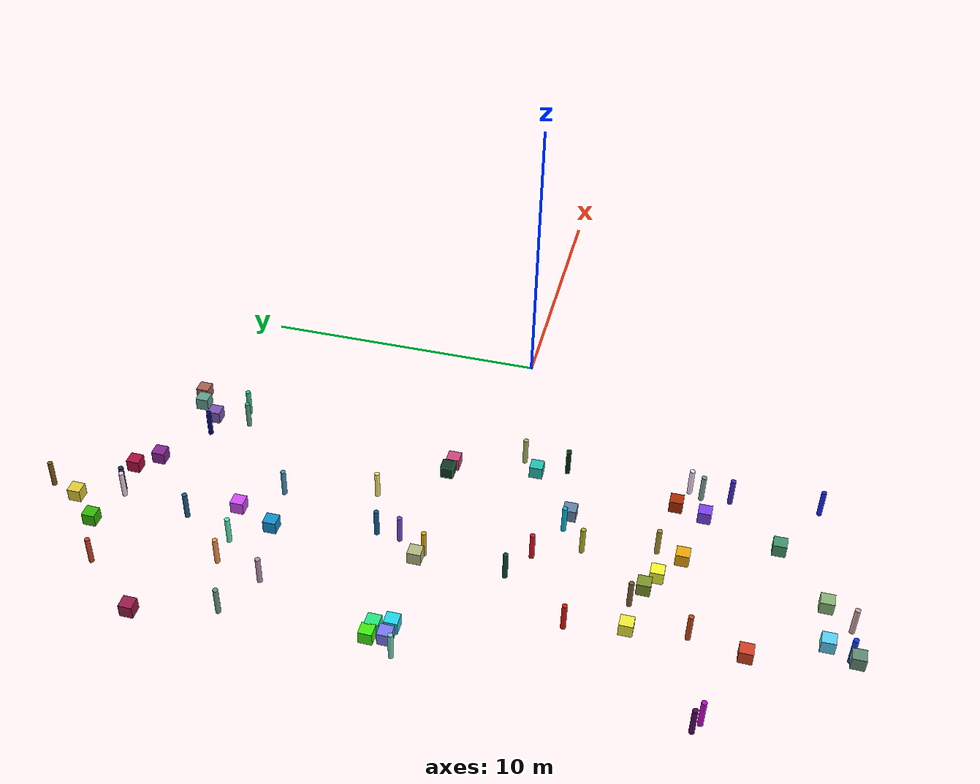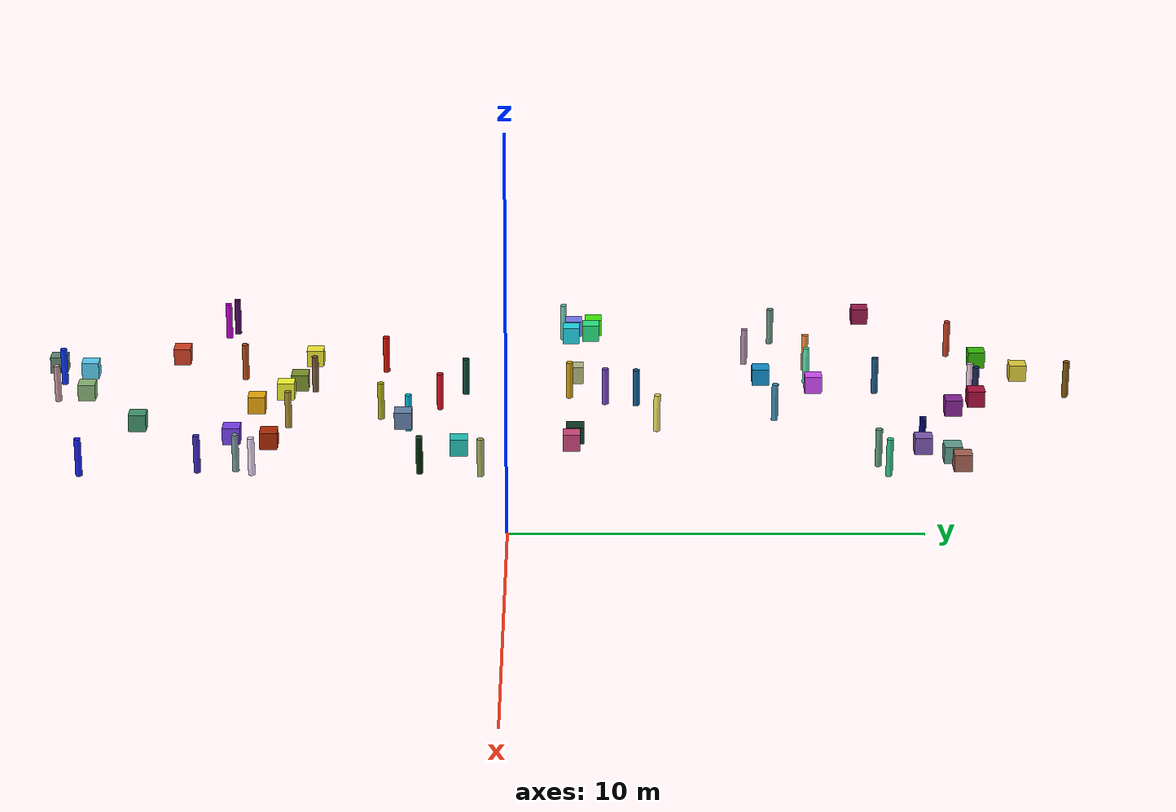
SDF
<sdf version="1.7">
 <world name="warehouse">
  <model name="ground_plane">
   <static>true</static>
   <link name="link">
    <collision name="collision">
     <geometry><plane><normal>0.0 0.0 1</normal><size>1 1</size></plane></geometry>
    </collision>
   </link>
  </model>
  <model name="unit_cylinder_0">
   <static>true</static>
   <pose>-12.4 6.25 0 0 0 0</pose>
   <link name="link">
    <collision name="collision">
     <geometry><cylinder><radius>0.085000</radius><length>1.000000</length></cylinder></geometry>
    </collision>
    <visual name="visual">
     <geometry><cylinder><radius>0.085000</radius><length>1.000000</length></cylinder></geometry>
     <material>
      <ambient>0.7270386856249603 0.569772761326217 0.6874630231590428 1</ambient>
      <diffuse>0.7270386856249603 0.569772761326217 0.6874630231590428 1</diffuse>
      <script><uri>file://media/materials/scripts/gazebo.material</uri><name>Gazebo/RandomColor0</name></script>
     </material>
    </visual>
   </link>
  </model>
  <model name="unit_cylinder_2">
   <static>true</static>
   <pose>-4.9 -6.97 0 0 0 0</pose>
   <link name="link">
    <collision name="collision">
     <geometry><cylinder><radius>0.085000</radius><length>1.000000</length></cylinder></geometry>
    </collision>
    <visual name="visual">
     <geometry><cylinder><radius>0.085000</radius><length>1.000000</length></cylinder></geometry>
     <material>
      <ambient>0.48882169617900995 0.6281090008410105 0.6111962959191779 1</ambient>
      <diffuse>0.48882169617900995 0.6281090008410105 0.6111962959191779 1</diffuse>
      <script><uri>file://media/materials/scripts/gazebo.material</uri><name>Gazebo/RandomColor2</name></script>
     </material>
    </visual>
   </link>
  </model>
  <model name="unit_box_4">
   <static>true</static>
   <pose>-13.58 2.07 0 0 0 0</pose>
   <link name="link">
    <collision name="collision">
     <geometry><box><size>0.450000 0.450000 0.450000</size></box></geometry>
    </collision>
    <visual name="visual">
     <geometry><box><size>0.450000 0.450000 0.450000</size></box></geometry>
     <material>
      <ambient>0.15437058983870744 0.9188239497218856 0.5189726235144633 1</ambient>
      <diffuse>0.15437058983870744 0.9188239497218856 0.5189726235144633 1</diffuse>
      <script><uri>file://media/materials/scripts/gazebo.material</uri><name>Gazebo/RandomColor4</name></script>
     </material>
    </visual>
   </link>
  </model>
  <model name="unit_box_5">
   <static>true</static>
   <pose>-5.43 -1.33 0 0 0 0</pose>
   <link name="link">
    <collision name="collision">
     <geometry><box><size>0.450000 0.450000 0.450000</size></box></geometry>
    </collision>
    <visual name="visual">
     <geometry><box><size>0.450000 0.450000 0.450000</size></box></geometry>
     <material>
      <ambient>0.1437150085725608 0.771430351193349 0.7161037341647061 1</ambient>
      <diffuse>0.1437150085725608 0.771430351193349 0.7161037341647061 1</diffuse>
      <script><uri>file://media/materials/scripts/gazebo.material</uri><name>Gazebo/RandomColor5</name></script>
     </material>
    </visual>
   </link>
  </model>
  <model name="unit_cylinder_6">
   <static>true</static>
   <pose>-11.76 -3.5 0 0 0 0</pose>
   <link name="link">
    <collision name="collision">
     <geometry><cylinder><radius>0.085000</radius><length>1.000000</length></cylinder></geometry>
    </collision>
    <visual name="visual">
     <geometry><cylinder><radius>0.085000</radius><length>1.000000</length></cylinder></geometry>
     <material>
      <ambient>0.8541178800004999 0.09001837165716808 0.022911375265942335 1</ambient>
      <diffuse>0.8541178800004999 0.09001837165716808 0.022911375265942335 1</diffuse>
      <script><uri>file://media/materials/scripts/gazebo.material</uri><name>Gazebo/RandomColor6</name></script>
     </material>
    </visual>
   </link>
  </model>
  <model name="unit_box_7">
   <static>true</static>
   <pose>-5.76 1.54 0 0 0 0</pose>
   <link name="link">
    <collision name="collision">
     <geometry><box><size>0.450000 0.450000 0.450000</size></box></geometry>
    </collision>
    <visual name="visual">
     <geometry><box><size>0.450000 0.450000 0.450000</size></box></geometry>
     <material>
      <ambient>0.8244783112689469 0.27947235165206885 0.4979456995320882 1</ambient>
      <diffuse>0.8244783112689469 0.27947235165206885 0.4979456995320882 1</diffuse>
      <script><uri>file://media/materials/scripts/gazebo.material</uri><name>Gazebo/RandomColor7</name></script>
     </material>
    </visual>
   </link>
  </model>
  <model name="unit_cylinder_9">
   <static>true</static>
   <pose>-4.68 -6.55 0 0 0 0</pose>
   <link name="link">
    <collision name="collision">
     <geometry><cylinder><radius>0.085000</radius><length>1.000000</length></cylinder></geometry>
    </collision>
    <visual name="visual">
     <geometry><cylinder><radius>0.085000</radius><length>1.000000</length></cylinder></geometry>
     <material>
      <ambient>0.9647823803268121 0.8732027528752004 0.9992866168511414 1</ambient>
      <diffuse>0.9647823803268121 0.8732027528752004 0.9992866168511414 1</diffuse>
      <script><uri>file://media/materials/scripts/gazebo.material</uri><name>Gazebo/RandomColor9</name></script>
     </material>
    </visual>
   </link>
  </model>
  <model name="unit_cylinder_10">
   <static>true</static>
   <pose>-10.3 -5.33 0 0 0 0</pose>
   <link name="link">
    <collision name="collision">
     <geometry><cylinder><radius>0.085000</radius><length>1.000000</length></cylinder></geometry>
    </collision>
    <visual name="visual">
     <geometry><cylinder><radius>0.085000</radius><length>1.000000</length></cylinder></geometry>
     <material>
      <ambient>0.4950050222993094 0.36748113770023316 0.22922007542965583 1</ambient>
      <diffuse>0.4950050222993094 0.36748113770023316 0.22922007542965583 1</diffuse>
      <script><uri>file://media/materials/scripts/gazebo.material</uri><name>Gazebo/RandomColor10</name></script>
     </material>
    </visual>
   </link>
  </model>
  <model name="unit_cylinder_11">
   <static>true</static>
   <pose>-10.81 -12.13 0 0 0 0</pose>
   <link name="link">
    <collision name="collision">
     <geometry><cylinder><radius>0.085000</radius><length>1.000000</length></cylinder></geometry>
    </collision>
    <visual name="visual">
     <geometry><cylinder><radius>0.085000</radius><length>1.000000</length></cylinder></geometry>
     <material>
      <ambient>0.04214225447750308 0.2186785520565364 0.993793384665782 1</ambient>
      <diffuse>0.04214225447750308 0.2186785520565364 0.993793384665782 1</diffuse>
      <script><uri>file://media/materials/scripts/gazebo.material</uri><name>Gazebo/RandomColor11</name></script>
     </material>
    </visual>
   </link>
  </model>
  <model name="unit_cylinder_12">
   <static>true</static>
   <pose>-9.37 3.25 0 0 0 0</pose>
   <link name="link">
    <collision name="collision">
     <geometry><cylinder><radius>0.085000</radius><length>1.000000</length></cylinder></geometry>
    </collision>
    <visual name="visual">
     <geometry><cylinder><radius>0.085000</radius><length>1.000000</length></cylinder></geometry>
     <material>
      <ambient>0.06544878131439513 0.3690667785904276 0.5863571859016304 1</ambient>
      <diffuse>0.06544878131439513 0.3690667785904276 0.5863571859016304 1</diffuse>
      <script><uri>file://media/materials/scripts/gazebo.material</uri><name>Gazebo/RandomColor12</name></script>
     </material>
    </visual>
   </link>
  </model>
  <model name="unit_box_13">
   <static>true</static>
   <pose>-7.0 -9.69 0 0 0 0</pose>
   <link name="link">
    <collision name="collision">
     <geometry><box><size>0.450000 0.450000 0.450000</size></box></geometry>
    </collision>
    <visual name="visual">
     <geometry><box><size>0.450000 0.450000 0.450000</size></box></geometry>
     <material>
      <ambient>0.26723961633187265 0.594587258055126 0.43162423170698283 1</ambient>
      <diffuse>0.26723961633187265 0.594587258055126 0.43162423170698283 1</diffuse>
      <script><uri>file://media/materials/scripts/gazebo.material</uri><name>Gazebo/RandomColor13</name></script>
     </material>
    </visual>
   </link>
  </model>
  <model name="unit_cylinder_13">
   <static>true</static>
   <pose>-11.97 7.88 0 0 0 0</pose>
   <link name="link">
    <collision name="collision">
     <geometry><cylinder><radius>0.085000</radius><length>1.000000</length></cylinder></geometry>
    </collision>
    <visual name="visual">
     <geometry><cylinder><radius>0.085000</radius><length>1.000000</length></cylinder></geometry>
     <material>
      <ambient>0.995783059129133 0.5780543401211613 0.259541788408418 1</ambient>
      <diffuse>0.995783059129133 0.5780543401211613 0.259541788408418 1</diffuse>
      <script><uri>file://media/materials/scripts/gazebo.material</uri><name>Gazebo/RandomColor13</name></script>
     </material>
    </visual>
   </link>
  </model>
  <model name="unit_box_17">
   <static>true</static>
   <pose>-13.9 1.58 0 0 0 0</pose>
   <link name="link">
    <collision name="collision">
     <geometry><box><size>0.450000 0.450000 0.450000</size></box></geometry>
    </collision>
    <visual name="visual">
     <geometry><box><size>0.450000 0.450000 0.450000</size></box></geometry>
     <material>
      <ambient>0.4912069242863344 0.4825291535516151 0.9687258591366672 1</ambient>
      <diffuse>0.4912069242863344 0.4825291535516151 0.9687258591366672 1</diffuse>
      <script><uri>file://media/materials/scripts/gazebo.material</uri><name>Gazebo/RandomColor17</name></script>
     </material>
    </visual>
   </link>
  </model>
  <model name="unit_cylinder_20">
   <static>true</static>
   <pose>-8.36 6.87 0 0 0 0</pose>
   <link name="link">
    <collision name="collision">
     <geometry><cylinder><radius>0.085000</radius><length>1.000000</length></cylinder></geometry>
    </collision>
    <visual name="visual">
     <geometry><cylinder><radius>0.085000</radius><length>1.000000</length></cylinder></geometry>
     <material>
      <ambient>0.24812325368981236 0.5832464418912141 0.7202497818833877 1</ambient>
      <diffuse>0.24812325368981236 0.5832464418912141 0.7202497818833877 1</diffuse>
      <script><uri>file://media/materials/scripts/gazebo.material</uri><name>Gazebo/RandomColor20</name></script>
     </material>
    </visual>
   </link>
  </model>
  <model name="unit_cylinder_21">
   <static>true</static>
   <pose>-9.62 12.27 0 0 0 0</pose>
   <link name="link">
    <collision name="collision">
     <geometry><cylinder><radius>0.085000</radius><length>1.000000</length></cylinder></geometry>
    </collision>
    <visual name="visual">
     <geometry><cylinder><radius>0.085000</radius><length>1.000000</length></cylinder></geometry>
     <material>
      <ambient>0.12439521310844526 0.16274525032053977 0.3672444559694883 1</ambient>
      <diffuse>0.12439521310844526 0.16274525032053977 0.3672444559694883 1</diffuse>
      <script><uri>file://media/materials/scripts/gazebo.material</uri><name>Gazebo/RandomColor21</name></script>
     </material>
    </visual>
   </link>
  </model>
  <model name="unit_box_22">
   <static>true</static>
   <pose>-9.22 -6.02 0 0 0 0</pose>
   <link name="link">
    <collision name="collision">
     <geometry><box><size>0.450000 0.450000 0.450000</size></box></geometry>
    </collision>
    <visual name="visual">
     <geometry><box><size>0.450000 0.450000 0.450000</size></box></geometry>
     <material>
      <ambient>0.9790693472931132 0.9973885884917622 0.19216060299283866 1</ambient>
      <diffuse>0.9790693472931132 0.9973885884917622 0.19216060299283866 1</diffuse>
      <script><uri>file://media/materials/scripts/gazebo.material</uri><name>Gazebo/RandomColor22</name></script>
     </material>
    </visual>
   </link>
  </model>
  <model name="unit_cylinder_22">
   <static>true</static>
   <pose>-7.61 3.76 0 0 0 0</pose>
   <link name="link">
    <collision name="collision">
     <geometry><cylinder><radius>0.085000</radius><length>1.000000</length></cylinder></geometry>
    </collision>
    <visual name="visual">
     <geometry><cylinder><radius>0.085000</radius><length>1.000000</length></cylinder></geometry>
     <material>
      <ambient>0.9892548789471347 0.917239920365452 0.40197223868547693 1</ambient>
      <diffuse>0.9892548789471347 0.917239920365452 0.40197223868547693 1</diffuse>
      <script><uri>file://media/materials/scripts/gazebo.material</uri><name>Gazebo/RandomColor22</name></script>
     </material>
    </visual>
   </link>
  </model>
  <model name="unit_cylinder_23">
   <static>true</static>
   <pose>-10.99 7.85 0 0 0 0</pose>
   <link name="link">
    <collision name="collision">
     <geometry><cylinder><radius>0.085000</radius><length>1.000000</length></cylinder></geometry>
    </collision>
    <visual name="visual">
     <geometry><cylinder><radius>0.085000</radius><length>1.000000</length></cylinder></geometry>
     <material>
      <ambient>0.3342248740142649 0.9366365608871166 0.7146100990959178 1</ambient>
      <diffuse>0.3342248740142649 0.9366365608871166 0.7146100990959178 1</diffuse>
      <script><uri>file://media/materials/scripts/gazebo.material</uri><name>Gazebo/RandomColor23</name></script>
     </material>
    </visual>
   </link>
  </model>
  <model name="unit_box_26">
   <static>true</static>
   <pose>-9.75 7.96 0 0 0 0</pose>
   <link name="link">
    <collision name="collision">
     <geometry><box><size>0.450000 0.450000 0.450000</size></box></geometry>
    </collision>
    <visual name="visual">
     <geometry><box><size>0.450000 0.450000 0.450000</size></box></geometry>
     <material>
      <ambient>0.8415530832419882 0.3011689718070558 0.9932040617403763 1</ambient>
      <diffuse>0.8415530832419882 0.3011689718070558 0.9932040617403763 1</diffuse>
      <script><uri>file://media/materials/scripts/gazebo.material</uri><name>Gazebo/RandomColor26</name></script>
     </material>
    </visual>
   </link>
  </model>
  <model name="unit_box_29">
   <static>true</static>
   <pose>-10.62 13.49 0 0 0 0</pose>
   <link name="link">
    <collision name="collision">
     <geometry><box><size>0.450000 0.450000 0.450000</size></box></geometry>
    </collision>
    <visual name="visual">
     <geometry><box><size>0.450000 0.450000 0.450000</size></box></geometry>
     <material>
      <ambient>0.8966413880098881 0.8153487945042813 0.2292422976076619 1</ambient>
      <diffuse>0.8966413880098881 0.8153487945042813 0.2292422976076619 1</diffuse>
      <script><uri>file://media/materials/scripts/gazebo.material</uri><name>Gazebo/RandomColor29</name></script>
     </material>
    </visual>
   </link>
  </model>
  <model name="unit_cylinder_29">
   <static>true</static>
   <pose>-7.81 -5.86 0 0 0 0</pose>
   <link name="link">
    <collision name="collision">
     <geometry><cylinder><radius>0.085000</radius><length>1.000000</length></cylinder></geometry>
    </collision>
    <visual name="visual">
     <geometry><cylinder><radius>0.085000</radius><length>1.000000</length></cylinder></geometry>
     <material>
      <ambient>0.6778833269621279 0.5771833709296245 0.19220893541006578 1</ambient>
      <diffuse>0.6778833269621279 0.5771833709296245 0.19220893541006578 1</diffuse>
      <script><uri>file://media/materials/scripts/gazebo.material</uri><name>Gazebo/RandomColor29</name></script>
     </material>
    </visual>
   </link>
  </model>
  <model name="unit_cylinder_30">
   <static>true</static>
   <pose>-13.01 11.85 0 0 0 0</pose>
   <link name="link">
    <collision name="collision">
     <geometry><cylinder><radius>0.085000</radius><length>1.000000</length></cylinder></geometry>
    </collision>
    <visual name="visual">
     <geometry><cylinder><radius>0.085000</radius><length>1.000000</length></cylinder></geometry>
     <material>
      <ambient>0.7972063003231086 0.26169675538670456 0.14036009018020967 1</ambient>
      <diffuse>0.7972063003231086 0.26169675538670456 0.14036009018020967 1</diffuse>
      <script><uri>file://media/materials/scripts/gazebo.material</uri><name>Gazebo/RandomColor30</name></script>
     </material>
    </visual>
   </link>
  </model>
  <model name="unit_box_31">
   <static>true</static>
   <pose>-10.32 6.59 0 0 0 0</pose>
   <link name="link">
    <collision name="collision">
     <geometry><box><size>0.450000 0.450000 0.450000</size></box></geometry>
    </collision>
    <visual name="visual">
     <geometry><box><size>0.450000 0.450000 0.450000</size></box></geometry>
     <material>
      <ambient>0.06718480721786102 0.5749825885620681 0.8250459653868738 1</ambient>
      <diffuse>0.06718480721786102 0.5749825885620681 0.8250459653868738 1</diffuse>
      <script><uri>file://media/materials/scripts/gazebo.material</uri><name>Gazebo/RandomColor31</name></script>
     </material>
    </visual>
   </link>
  </model>
  <model name="unit_cylinder_31">
   <static>true</static>
   <pose>-9.6 -12.14 0 0 0 0</pose>
   <link name="link">
    <collision name="collision">
     <geometry><cylinder><radius>0.085000</radius><length>1.000000</length></cylinder></geometry>
    </collision>
    <visual name="visual">
     <geometry><cylinder><radius>0.085000</radius><length>1.000000</length></cylinder></geometry>
     <material>
      <ambient>0.7969686060074804 0.6154850600378056 0.6142932126674876 1</ambient>
      <diffuse>0.7969686060074804 0.6154850600378056 0.6142932126674876 1</diffuse>
      <script><uri>file://media/materials/scripts/gazebo.material</uri><name>Gazebo/RandomColor31</name></script>
     </material>
    </visual>
   </link>
  </model>
  <model name="unit_box_32">
   <static>true</static>
   <pose>-11.74 -9.03 0 0 0 0</pose>
   <link name="link">
    <collision name="collision">
     <geometry><box><size>0.450000 0.450000 0.450000</size></box></geometry>
    </collision>
    <visual name="visual">
     <geometry><box><size>0.450000 0.450000 0.450000</size></box></geometry>
     <material>
      <ambient>0.8449918507670913 0.25845815987905274 0.13731950994905096 1</ambient>
      <diffuse>0.8449918507670913 0.25845815987905274 0.13731950994905096 1</diffuse>
      <script><uri>file://media/materials/scripts/gazebo.material</uri><name>Gazebo/RandomColor32</name></script>
     </material>
    </visual>
   </link>
  </model>
  <model name="unit_cylinder_34">
   <static>true</static>
   <pose>-4.82 -7.94 0 0 0 0</pose>
   <link name="link">
    <collision name="collision">
     <geometry><cylinder><radius>0.085000</radius><length>1.000000</length></cylinder></geometry>
    </collision>
    <visual name="visual">
     <geometry><cylinder><radius>0.085000</radius><length>1.000000</length></cylinder></geometry>
     <material>
      <ambient>0.26438404920647074 0.16485052444116133 0.7863442865016325 1</ambient>
      <diffuse>0.26438404920647074 0.16485052444116133 0.7863442865016325 1</diffuse>
      <script><uri>file://media/materials/scripts/gazebo.material</uri><name>Gazebo/RandomColor34</name></script>
     </material>
    </visual>
   </link>
  </model>
  <model name="unit_box_37">
   <static>true</static>
   <pose>-11.62 -5.41 0 0 0 0</pose>
   <link name="link">
    <collision name="collision">
     <geometry><box><size>0.450000 0.450000 0.450000</size></box></geometry>
    </collision>
    <visual name="visual">
     <geometry><box><size>0.450000 0.450000 0.450000</size></box></geometry>
     <material>
      <ambient>0.9702137779765875 0.9434495486808279 0.22789114306933367 1</ambient>
      <diffuse>0.9702137779765875 0.9434495486808279 0.22789114306933367 1</diffuse>
      <script><uri>file://media/materials/scripts/gazebo.material</uri><name>Gazebo/RandomColor37</name></script>
     </material>
    </visual>
   </link>
  </model>
  <model name="unit_cylinder_39">
   <static>true</static>
   <pose>-13.96 7.04 0 0 0 0</pose>
   <link name="link">
    <collision name="collision">
     <geometry><cylinder><radius>0.085000</radius><length>1.000000</length></cylinder></geometry>
    </collision>
    <visual name="visual">
     <geometry><cylinder><radius>0.085000</radius><length>1.000000</length></cylinder></geometry>
     <material>
      <ambient>0.41568545869208073 0.602791167472284 0.5258461333659584 1</ambient>
      <diffuse>0.41568545869208073 0.602791167472284 0.5258461333659584 1</diffuse>
      <script><uri>file://media/materials/scripts/gazebo.material</uri><name>Gazebo/RandomColor39</name></script>
     </material>
    </visual>
   </link>
  </model>
  <model name="unit_cylinder_40">
   <static>true</static>
   <pose>-4.59 -10.91 0 0 0 0</pose>
   <link name="link">
    <collision name="collision">
     <geometry><cylinder><radius>0.085000</radius><length>1.000000</length></cylinder></geometry>
    </collision>
    <visual name="visual">
     <geometry><cylinder><radius>0.085000</radius><length>1.000000</length></cylinder></geometry>
     <material>
      <ambient>0.10357561696808437 0.13548825367049555 0.9587023111678865 1</ambient>
      <diffuse>0.10357561696808437 0.13548825367049555 0.9587023111678865 1</diffuse>
      <script><uri>file://media/materials/scripts/gazebo.material</uri><name>Gazebo/RandomColor40</name></script>
     </material>
    </visual>
   </link>
  </model>
  <model name="unit_cylinder_42">
   <static>true</static>
   <pose>-9.91 1.48 0 0 0 0</pose>
   <link name="link">
    <collision name="collision">
     <geometry><cylinder><radius>0.085000</radius><length>1.000000</length></cylinder></geometry>
    </collision>
    <visual name="visual">
     <geometry><cylinder><radius>0.085000</radius><length>1.000000</length></cylinder></geometry>
     <material>
      <ambient>0.8639221269093991 0.6518377386961743 0.05677613153230632 1</ambient>
      <diffuse>0.8639221269093991 0.6518377386961743 0.05677613153230632 1</diffuse>
      <script><uri>file://media/materials/scripts/gazebo.material</uri><name>Gazebo/RandomColor42</name></script>
     </material>
    </visual>
   </link>
  </model>
  <model name="unit_box_44">
   <static>true</static>
   <pose>-4.48 11.38 0 0 0 0</pose>
   <link name="link">
    <collision name="collision">
     <geometry><box><size>0.450000 0.450000 0.450000</size></box></geometry>
    </collision>
    <visual name="visual">
     <geometry><box><size>0.450000 0.450000 0.450000</size></box></geometry>
     <material>
      <ambient>0.6631197643427946 0.3876830070741366 0.33279311995743754 1</ambient>
      <diffuse>0.6631197643427946 0.3876830070741366 0.33279311995743754 1</diffuse>
      <script><uri>file://media/materials/scripts/gazebo.material</uri><name>Gazebo/RandomColor44</name></script>
     </material>
    </visual>
   </link>
  </model>
  <model name="unit_cylinder_44">
   <static>true</static>
   <pose>-4.68 9.56 0 0 0 0</pose>
   <link name="link">
    <collision name="collision">
     <geometry><cylinder><radius>0.085000</radius><length>1.000000</length></cylinder></geometry>
    </collision>
    <visual name="visual">
     <geometry><cylinder><radius>0.085000</radius><length>1.000000</length></cylinder></geometry>
     <material>
      <ambient>0.20145793841162052 0.7797987440153381 0.5465466804695768 1</ambient>
      <diffuse>0.20145793841162052 0.7797987440153381 0.5465466804695768 1</diffuse>
      <script><uri>file://media/materials/scripts/gazebo.material</uri><name>Gazebo/RandomColor44</name></script>
     </material>
    </visual>
   </link>
  </model>
  <model name="unit_box_45">
   <static>true</static>
   <pose>-7.2 -2.83 0 0 0 0</pose>
   <link name="link">
    <collision name="collision">
     <geometry><box><size>0.450000 0.450000 0.450000</size></box></geometry>
    </collision>
    <visual name="visual">
     <geometry><box><size>0.450000 0.450000 0.450000</size></box></geometry>
     <material>
      <ambient>0.39930964963083426 0.5217477514089284 0.6874295152312618 1</ambient>
      <diffuse>0.39930964963083426 0.5217477514089284 0.6874295152312618 1</diffuse>
      <script><uri>file://media/materials/scripts/gazebo.material</uri><name>Gazebo/RandomColor45</name></script>
     </material>
    </visual>
   </link>
  </model>
  <model name="unit_cylinder_45">
   <static>true</static>
   <pose>-9.46 2.43 0 0 0 0</pose>
   <link name="link">
    <collision name="collision">
     <geometry><cylinder><radius>0.085000</radius><length>1.000000</length></cylinder></geometry>
    </collision>
    <visual name="visual">
     <geometry><cylinder><radius>0.085000</radius><length>1.000000</length></cylinder></geometry>
     <material>
      <ambient>0.4779025021340656 0.2847561499014126 0.8117435964219745 1</ambient>
      <diffuse>0.4779025021340656 0.2847561499014126 0.8117435964219745 1</diffuse>
      <script><uri>file://media/materials/scripts/gazebo.material</uri><name>Gazebo/RandomColor45</name></script>
     </material>
    </visual>
   </link>
  </model>
  <model name="unit_box_47">
   <static>true</static>
   <pose>-5.02 11.18 0 0 0 0</pose>
   <link name="link">
    <collision name="collision">
     <geometry><box><size>0.450000 0.450000 0.450000</size></box></geometry>
    </collision>
    <visual name="visual">
     <geometry><box><size>0.450000 0.450000 0.450000</size></box></geometry>
     <material>
      <ambient>0.38792337736426397 0.6345468560964312 0.5708395714377654 1</ambient>
      <diffuse>0.38792337736426397 0.6345468560964312 0.5708395714377654 1</diffuse>
      <script><uri>file://media/materials/scripts/gazebo.material</uri><name>Gazebo/RandomColor47</name></script>
     </material>
    </visual>
   </link>
  </model>
  <model name="unit_cylinder_47">
   <static>true</static>
   <pose>-5.32 9.34 0 0 0 0</pose>
   <link name="link">
    <collision name="collision">
     <geometry><cylinder><radius>0.085000</radius><length>1.000000</length></cylinder></geometry>
    </collision>
    <visual name="visual">
     <geometry><cylinder><radius>0.085000</radius><length>1.000000</length></cylinder></geometry>
     <material>
      <ambient>0.36328151507672013 0.6446327965635456 0.4964589624056154 1</ambient>
      <diffuse>0.36328151507672013 0.6446327965635456 0.4964589624056154 1</diffuse>
      <script><uri>file://media/materials/scripts/gazebo.material</uri><name>Gazebo/RandomColor47</name></script>
     </material>
    </visual>
   </link>
  </model>
  <model name="unit_box_56">
   <static>true</static>
   <pose>-14.91 9.59 0 0 0 0</pose>
   <link name="link">
    <collision name="collision">
     <geometry><box><size>0.450000 0.450000 0.450000</size></box></geometry>
    </collision>
    <visual name="visual">
     <geometry><box><size>0.450000 0.450000 0.450000</size></box></geometry>
     <material>
      <ambient>0.6095797506685201 0.11108479905072177 0.3000165837855008 1</ambient>
      <diffuse>0.6095797506685201 0.11108479905072177 0.3000165837855008 1</diffuse>
      <script><uri>file://media/materials/scripts/gazebo.material</uri><name>Gazebo/RandomColor56</name></script>
     </material>
    </visual>
   </link>
  </model>
  <model name="unit_cylinder_57">
   <static>true</static>
   <pose>-6.11 10.52 0 0 0 0</pose>
   <link name="link">
    <collision name="collision">
     <geometry><cylinder><radius>0.085000</radius><length>1.000000</length></cylinder></geometry>
    </collision>
    <visual name="visual">
     <geometry><cylinder><radius>0.085000</radius><length>1.000000</length></cylinder></geometry>
     <material>
      <ambient>0.01787969089570951 0.029026473805173314 0.4287503620357712 1</ambient>
      <diffuse>0.01787969089570951 0.029026473805173314 0.4287503620357712 1</diffuse>
      <script><uri>file://media/materials/scripts/gazebo.material</uri><name>Gazebo/RandomColor57</name></script>
     </material>
    </visual>
   </link>
  </model>
  <model name="unit_box_58">
   <static>true</static>
   <pose>-5.86 -6.2 0 0 0 0</pose>
   <link name="link">
    <collision name="collision">
     <geometry><box><size>0.450000 0.450000 0.450000</size></box></geometry>
    </collision>
    <visual name="visual">
     <geometry><box><size>0.450000 0.450000 0.450000</size></box></geometry>
     <material>
      <ambient>0.7003695079028653 0.16801459349716064 0.008151112647966197 1</ambient>
      <diffuse>0.7003695079028653 0.16801459349716064 0.008151112647966197 1</diffuse>
      <script><uri>file://media/materials/scripts/gazebo.material</uri><name>Gazebo/RandomColor58</name></script>
     </material>
    </visual>
   </link>
  </model>
  <model name="unit_cylinder_59">
   <static>true</static>
   <pose>-11.19 -7.28 0 0 0 0</pose>
   <link name="link">
    <collision name="collision">
     <geometry><cylinder><radius>0.085000</radius><length>1.000000</length></cylinder></geometry>
    </collision>
    <visual name="visual">
     <geometry><cylinder><radius>0.085000</radius><length>1.000000</length></cylinder></geometry>
     <material>
      <ambient>0.7339225189151787 0.2951018365605579 0.09087196127531472 1</ambient>
      <diffuse>0.7339225189151787 0.2951018365605579 0.09087196127531472 1</diffuse>
      <script><uri>file://media/materials/scripts/gazebo.material</uri><name>Gazebo/RandomColor59</name></script>
     </material>
    </visual>
   </link>
  </model>
  <model name="unit_box_61">
   <static>true</static>
   <pose>-8.14 11.52 0 0 0 0</pose>
   <link name="link">
    <collision name="collision">
     <geometry><box><size>0.450000 0.450000 0.450000</size></box></geometry>
    </collision>
    <visual name="visual">
     <geometry><box><size>0.450000 0.450000 0.450000</size></box></geometry>
     <material>
      <ambient>0.5363839989484961 0.14391320118665263 0.5877427069394279 1</ambient>
      <diffuse>0.5363839989484961 0.14391320118665263 0.5877427069394279 1</diffuse>
      <script><uri>file://media/materials/scripts/gazebo.material</uri><name>Gazebo/RandomColor61</name></script>
     </material>
    </visual>
   </link>
  </model>
  <model name="unit_box_62">
   <static>true</static>
   <pose>-11.56 12.49 0 0 0 0</pose>
   <link name="link">
    <collision name="collision">
     <geometry><box><size>0.450000 0.450000 0.450000</size></box></geometry>
    </collision>
    <visual name="visual">
     <geometry><box><size>0.450000 0.450000 0.450000</size></box></geometry>
     <material>
      <ambient>0.2042197278027209 0.7343110504009601 0.028027518348397118 1</ambient>
      <diffuse>0.2042197278027209 0.7343110504009601 0.028027518348397118 1</diffuse>
      <script><uri>file://media/materials/scripts/gazebo.material</uri><name>Gazebo/RandomColor62</name></script>
     </material>
    </visual>
   </link>
  </model>
  <model name="unit_cylinder_62">
   <static>true</static>
   <pose>-4.62 -0.76 0 0 0 0</pose>
   <link name="link">
    <collision name="collision">
     <geometry><cylinder><radius>0.085000</radius><length>1.000000</length></cylinder></geometry>
    </collision>
    <visual name="visual">
     <geometry><cylinder><radius>0.085000</radius><length>1.000000</length></cylinder></geometry>
     <material>
      <ambient>0.662480375475622 0.7086710940401427 0.38748046412518333 1</ambient>
      <diffuse>0.662480375475622 0.7086710940401427 0.38748046412518333 1</diffuse>
      <script><uri>file://media/materials/scripts/gazebo.material</uri><name>Gazebo/RandomColor62</name></script>
     </material>
    </visual>
   </link>
  </model>
  <model name="unit_cylinder_63">
   <static>true</static>
   <pose>-7.59 -2.71 0 0 0 0</pose>
   <link name="link">
    <collision name="collision">
     <geometry><cylinder><radius>0.085000</radius><length>1.000000</length></cylinder></geometry>
    </collision>
    <visual name="visual">
     <geometry><cylinder><radius>0.085000</radius><length>1.000000</length></cylinder></geometry>
     <material>
      <ambient>0.008372863184059387 0.7317613258611915 0.8592941286938609 1</ambient>
      <diffuse>0.008372863184059387 0.7317613258611915 0.8592941286938609 1</diffuse>
      <script><uri>file://media/materials/scripts/gazebo.material</uri><name>Gazebo/RandomColor63</name></script>
     </material>
    </visual>
   </link>
  </model>
  <model name="unit_box_65">
   <static>true</static>
   <pose>-13.99 2.14 0 0 0 0</pose>
   <link name="link">
    <collision name="collision">
     <geometry><box><size>0.450000 0.450000 0.450000</size></box></geometry>
    </collision>
    <visual name="visual">
     <geometry><box><size>0.450000 0.450000 0.450000</size></box></geometry>
     <material>
      <ambient>0.2489063488126494 0.9521900772876134 0.0654943164249201 1</ambient>
      <diffuse>0.2489063488126494 0.9521900772876134 0.0654943164249201 1</diffuse>
      <script><uri>file://media/materials/scripts/gazebo.material</uri><name>Gazebo/RandomColor65</name></script>
     </material>
    </visual>
   </link>
  </model>
  <model name="unit_box_66">
   <static>true</static>
   <pose>-13.38 1.52 0 0 0 0</pose>
   <link name="link">
    <collision name="collision">
     <geometry><box><size>0.450000 0.450000 0.450000</size></box></geometry>
    </collision>
    <visual name="visual">
     <geometry><box><size>0.450000 0.450000 0.450000</size></box></geometry>
     <material>
      <ambient>0.1367128707793811 0.8546196453339283 0.9266878020927927 1</ambient>
      <diffuse>0.1367128707793811 0.8546196453339283 0.9266878020927927 1</diffuse>
      <script><uri>file://media/materials/scripts/gazebo.material</uri><name>Gazebo/RandomColor66</name></script>
     </material>
    </visual>
   </link>
  </model>
  <model name="unit_cylinder_67">
   <static>true</static>
   <pose>-9.87 12.14 0 0 0 0</pose>
   <link name="link">
    <collision name="collision">
     <geometry><cylinder><radius>0.085000</radius><length>1.000000</length></cylinder></geometry>
    </collision>
    <visual name="visual">
     <geometry><cylinder><radius>0.085000</radius><length>1.000000</length></cylinder></geometry>
     <material>
      <ambient>0.9581310048842133 0.8285603527349837 0.9189119804394036 1</ambient>
      <diffuse>0.9581310048842133 0.8285603527349837 0.9189119804394036 1</diffuse>
      <script><uri>file://media/materials/scripts/gazebo.material</uri><name>Gazebo/RandomColor67</name></script>
     </material>
    </visual>
   </link>
  </model>
  <model name="unit_box_72">
   <static>true</static>
   <pose>-11.1 -12.29 0 0 0 0</pose>
   <link name="link">
    <collision name="collision">
     <geometry><box><size>0.450000 0.450000 0.450000</size></box></geometry>
    </collision>
    <visual name="visual">
     <geometry><box><size>0.450000 0.450000 0.450000</size></box></geometry>
     <material>
      <ambient>0.38981164856494377 0.5528309416498774 0.47220127030813797 1</ambient>
      <diffuse>0.38981164856494377 0.5528309416498774 0.47220127030813797 1</diffuse>
      <script><uri>file://media/materials/scripts/gazebo.material</uri><name>Gazebo/RandomColor72</name></script>
     </material>
    </visual>
   </link>
  </model>
  <model name="unit_box_76">
   <static>true</static>
   <pose>-9.1 -11.28 0 0 0 0</pose>
   <link name="link">
    <collision name="collision">
     <geometry><box><size>0.450000 0.450000 0.450000</size></box></geometry>
    </collision>
    <visual name="visual">
     <geometry><box><size>0.450000 0.450000 0.450000</size></box></geometry>
     <material>
      <ambient>0.5409397231979682 0.7252945163503771 0.47450130297310633 1</ambient>
      <diffuse>0.5409397231979682 0.7252945163503771 0.47450130297310633 1</diffuse>
      <script><uri>file://media/materials/scripts/gazebo.material</uri><name>Gazebo/RandomColor76</name></script>
     </material>
    </visual>
   </link>
  </model>
  <model name="unit_cylinder_76">
   <static>true</static>
   <pose>-4.78 -2.31 0 0 0 0</pose>
   <link name="link">
    <collision name="collision">
     <geometry><cylinder><radius>0.085000</radius><length>1.000000</length></cylinder></geometry>
    </collision>
    <visual name="visual">
     <geometry><cylinder><radius>0.085000</radius><length>1.000000</length></cylinder></geometry>
     <material>
      <ambient>0.013179998808470761 0.16304793272386342 0.04363945946120473 1</ambient>
      <diffuse>0.013179998808470761 0.16304793272386342 0.04363945946120473 1</diffuse>
      <script><uri>file://media/materials/scripts/gazebo.material</uri><name>Gazebo/RandomColor76</name></script>
     </material>
    </visual>
   </link>
  </model>
  <model name="unit_box_78">
   <static>true</static>
   <pose>-8.26 -6.71 0 0 0 0</pose>
   <link name="link">
    <collision name="collision">
     <geometry><box><size>0.450000 0.450000 0.450000</size></box></geometry>
    </collision>
    <visual name="visual">
     <geometry><box><size>0.450000 0.450000 0.450000</size></box></geometry>
     <material>
      <ambient>0.9395130079422334 0.6667388288054016 0.03222323387546522 1</ambient>
      <diffuse>0.9395130079422334 0.6667388288054016 0.03222323387546522 1</diffuse>
      <script><uri>file://media/materials/scripts/gazebo.material</uri><name>Gazebo/RandomColor78</name></script>
     </material>
    </visual>
   </link>
  </model>
  <model name="unit_box_80">
   <static>true</static>
   <pose>-10.68 -11.39 0 0 0 0</pose>
   <link name="link">
    <collision name="collision">
     <geometry><box><size>0.450000 0.450000 0.450000</size></box></geometry>
    </collision>
    <visual name="visual">
     <geometry><box><size>0.450000 0.450000 0.450000</size></box></geometry>
     <material>
      <ambient>0.35489274644182667 0.8287384588762341 0.9752382608606054 1</ambient>
      <diffuse>0.35489274644182667 0.8287384588762341 0.9752382608606054 1</diffuse>
      <script><uri>file://media/materials/scripts/gazebo.material</uri><name>Gazebo/RandomColor80</name></script>
     </material>
    </visual>
   </link>
  </model>
  <model name="unit_cylinder_80">
   <static>true</static>
   <pose>-14.64 -7.81 0 0 0 0</pose>
   <link name="link">
    <collision name="collision">
     <geometry><cylinder><radius>0.085000</radius><length>1.000000</length></cylinder></geometry>
    </collision>
    <visual name="visual">
     <geometry><cylinder><radius>0.085000</radius><length>1.000000</length></cylinder></geometry>
     <material>
      <ambient>0.31835768815626864 0.03280251936315859 0.37640282077003584 1</ambient>
      <diffuse>0.31835768815626864 0.03280251936315859 0.37640282077003584 1</diffuse>
      <script><uri>file://media/materials/scripts/gazebo.material</uri><name>Gazebo/RandomColor80</name></script>
     </material>
    </visual>
   </link>
  </model>
  <model name="unit_box_81">
   <static>true</static>
   <pose>-8.77 12.18 0 0 0 0</pose>
   <link name="link">
    <collision name="collision">
     <geometry><box><size>0.450000 0.450000 0.450000</size></box></geometry>
    </collision>
    <visual name="visual">
     <geometry><box><size>0.450000 0.450000 0.450000</size></box></geometry>
     <material>
      <ambient>0.689647804012935 0.057835398156121265 0.24376907127782965 1</ambient>
      <diffuse>0.689647804012935 0.057835398156121265 0.24376907127782965 1</diffuse>
      <script><uri>file://media/materials/scripts/gazebo.material</uri><name>Gazebo/RandomColor81</name></script>
     </material>
    </visual>
   </link>
  </model>
  <model name="unit_box_84">
   <static>true</static>
   <pose>-5.59 10.49 0 0 0 0</pose>
   <link name="link">
    <collision name="collision">
     <geometry><box><size>0.450000 0.450000 0.450000</size></box></geometry>
    </collision>
    <visual name="visual">
     <geometry><box><size>0.450000 0.450000 0.450000</size></box></geometry>
     <material>
      <ambient>0.4928691322157157 0.3472791533133448 0.7135953453188647 1</ambient>
      <diffuse>0.4928691322157157 0.3472791533133448 0.7135953453188647 1</diffuse>
      <script><uri>file://media/materials/scripts/gazebo.material</uri><name>Gazebo/RandomColor84</name></script>
     </material>
    </visual>
   </link>
  </model>
  <model name="unit_cylinder_86">
   <static>true</static>
   <pose>-10.02 14.72 0 0 0 0</pose>
   <link name="link">
    <collision name="collision">
     <geometry><cylinder><radius>0.085000</radius><length>1.000000</length></cylinder></geometry>
    </collision>
    <visual name="visual">
     <geometry><cylinder><radius>0.085000</radius><length>1.000000</length></cylinder></geometry>
     <material>
      <ambient>0.5154605478443303 0.3584997002211041 0.0643909300822969 1</ambient>
      <diffuse>0.5154605478443303 0.3584997002211041 0.0643909300822969 1</diffuse>
      <script><uri>file://media/materials/scripts/gazebo.material</uri><name>Gazebo/RandomColor86</name></script>
     </material>
    </visual>
   </link>
  </model>
  <model name="unit_box_87">
   <static>true</static>
   <pose>-9.84 -5.69 0 0 0 0</pose>
   <link name="link">
    <collision name="collision">
     <geometry><box><size>0.450000 0.450000 0.450000</size></box></geometry>
    </collision>
    <visual name="visual">
     <geometry><box><size>0.450000 0.450000 0.450000</size></box></geometry>
     <material>
      <ambient>0.5012704002087933 0.5910797060338985 0.17561348249015785 1</ambient>
      <diffuse>0.5012704002087933 0.5910797060338985 0.17561348249015785 1</diffuse>
      <script><uri>file://media/materials/scripts/gazebo.material</uri><name>Gazebo/RandomColor87</name></script>
     </material>
    </visual>
   </link>
  </model>
  <model name="unit_cylinder_87">
   <static>true</static>
   <pose>-9.08 -1.94 0 0 0 0</pose>
   <link name="link">
    <collision name="collision">
     <geometry><cylinder><radius>0.085000</radius><length>1.000000</length></cylinder></geometry>
    </collision>
    <visual name="visual">
     <geometry><cylinder><radius>0.085000</radius><length>1.000000</length></cylinder></geometry>
     <material>
      <ambient>0.8816158183251462 0.060824286571495745 0.1338356930896335 1</ambient>
      <diffuse>0.8816158183251462 0.060824286571495745 0.1338356930896335 1</diffuse>
      <script><uri>file://media/materials/scripts/gazebo.material</uri><name>Gazebo/RandomColor87</name></script>
     </material>
    </visual>
   </link>
  </model>
  <model name="unit_box_88">
   <static>true</static>
   <pose>-10.43 1.62 0 0 0 0</pose>
   <link name="link">
    <collision name="collision">
     <geometry><box><size>0.450000 0.450000 0.450000</size></box></geometry>
    </collision>
    <visual name="visual">
     <geometry><box><size>0.450000 0.450000 0.450000</size></box></geometry>
     <material>
      <ambient>0.7229236914456652 0.7338616430867005 0.5149461527781997 1</ambient>
      <diffuse>0.7229236914456652 0.7338616430867005 0.5149461527781997 1</diffuse>
      <script><uri>file://media/materials/scripts/gazebo.material</uri><name>Gazebo/RandomColor88</name></script>
     </material>
    </visual>
   </link>
  </model>
  <model name="unit_box_91">
   <static>true</static>
   <pose>-6.14 -7.18 0 0 0 0</pose>
   <link name="link">
    <collision name="collision">
     <geometry><box><size>0.450000 0.450000 0.450000</size></box></geometry>
    </collision>
    <visual name="visual">
     <geometry><box><size>0.450000 0.450000 0.450000</size></box></geometry>
     <material>
      <ambient>0.4808184680388824 0.2679075207407148 0.9519797934633689 1</ambient>
      <diffuse>0.4808184680388824 0.2679075207407148 0.9519797934633689 1</diffuse>
      <script><uri>file://media/materials/scripts/gazebo.material</uri><name>Gazebo/RandomColor91</name></script>
     </material>
    </visual>
   </link>
  </model>
  <model name="unit_cylinder_93">
   <static>true</static>
   <pose>-8.41 -3.47 0 0 0 0</pose>
   <link name="link">
    <collision name="collision">
     <geometry><cylinder><radius>0.085000</radius><length>1.000000</length></cylinder></geometry>
    </collision>
    <visual name="visual">
     <geometry><cylinder><radius>0.085000</radius><length>1.000000</length></cylinder></geometry>
     <material>
      <ambient>0.7057517197948977 0.7061813863793985 0.11034912288732901 1</ambient>
      <diffuse>0.7057517197948977 0.7061813863793985 0.11034912288732901 1</diffuse>
      <script><uri>file://media/materials/scripts/gazebo.material</uri><name>Gazebo/RandomColor93</name></script>
     </material>
    </visual>
   </link>
  </model>
  <model name="unit_box_95">
   <static>true</static>
   <pose>-6.23 1.63 0 0 0 0</pose>
   <link name="link">
    <collision name="collision">
     <geometry><box><size>0.450000 0.450000 0.450000</size></box></geometry>
    </collision>
    <visual name="visual">
     <geometry><box><size>0.450000 0.450000 0.450000</size></box></geometry>
     <material>
      <ambient>0.05813414531011152 0.23400090364846238 0.14655004740020272 1</ambient>
      <diffuse>0.05813414531011152 0.23400090364846238 0.14655004740020272 1</diffuse>
      <script><uri>file://media/materials/scripts/gazebo.material</uri><name>Gazebo/RandomColor95</name></script>
     </material>
    </visual>
   </link>
  </model>
  <model name="unit_cylinder_95">
   <static>true</static>
   <pose>-14.26 1.31 0 0 0 0</pose>
   <link name="link">
    <collision name="collision">
     <geometry><cylinder><radius>0.085000</radius><length>1.000000</length></cylinder></geometry>
    </collision>
    <visual name="visual">
     <geometry><cylinder><radius>0.085000</radius><length>1.000000</length></cylinder></geometry>
     <material>
      <ambient>0.44111857098849594 0.8353070171536493 0.7302875633268783 1</ambient>
      <diffuse>0.44111857098849594 0.8353070171536493 0.7302875633268783 1</diffuse>
      <script><uri>file://media/materials/scripts/gazebo.material</uri><name>Gazebo/RandomColor95</name></script>
     </material>
    </visual>
   </link>
  </model>
  <model name="unit_cylinder_96">
   <static>true</static>
   <pose>-14.3 -8.02 0 0 0 0</pose>
   <link name="link">
    <collision name="collision">
     <geometry><cylinder><radius>0.085000</radius><length>1.000000</length></cylinder></geometry>
    </collision>
    <visual name="visual">
     <geometry><cylinder><radius>0.085000</radius><length>1.000000</length></cylinder></geometry>
     <material>
      <ambient>0.7861661280473047 0.011183730173686457 0.8327885021150151 1</ambient>
      <diffuse>0.7861661280473047 0.011183730173686457 0.8327885021150151 1</diffuse>
      <script><uri>file://media/materials/scripts/gazebo.material</uri><name>Gazebo/RandomColor96</name></script>
     </material>
    </visual>
   </link>
  </model>
  <model name="unit_cylinder_97">
   <static>true</static>
   <pose>-10.15 -1.29 0 0 0 0</pose>
   <link name="link">
    <collision name="collision">
     <geometry><cylinder><radius>0.085000</radius><length>1.000000</length></cylinder></geometry>
    </collision>
    <visual name="visual">
     <geometry><cylinder><radius>0.085000</radius><length>1.000000</length></cylinder></geometry>
     <material>
      <ambient>0.050155544714927114 0.28557197631272524 0.2226232175291828 1</ambient>
      <diffuse>0.050155544714927114 0.28557197631272524 0.2226232175291828 1</diffuse>
      <script><uri>file://media/materials/scripts/gazebo.material</uri><name>Gazebo/RandomColor97</name></script>
     </material>
    </visual>
   </link>
  </model>
  <model name="unit_cylinder_98">
   <static>true</static>
   <pose>-10.28 9.65 0 0 0 0</pose>
   <link name="link">
    <collision name="collision">
     <geometry><cylinder><radius>0.085000</radius><length>1.000000</length></cylinder></geometry>
    </collision>
    <visual name="visual">
     <geometry><cylinder><radius>0.085000</radius><length>1.000000</length></cylinder></geometry>
     <material>
      <ambient>0.12031156576756386 0.3635114634632055 0.5597576915183573 1</ambient>
      <diffuse>0.12031156576756386 0.3635114634632055 0.5597576915183573 1</diffuse>
      <script><uri>file://media/materials/scripts/gazebo.material</uri><name>Gazebo/RandomColor98</name></script>
     </material>
    </visual>
   </link>
  </model>
 </world>
</sdf>
